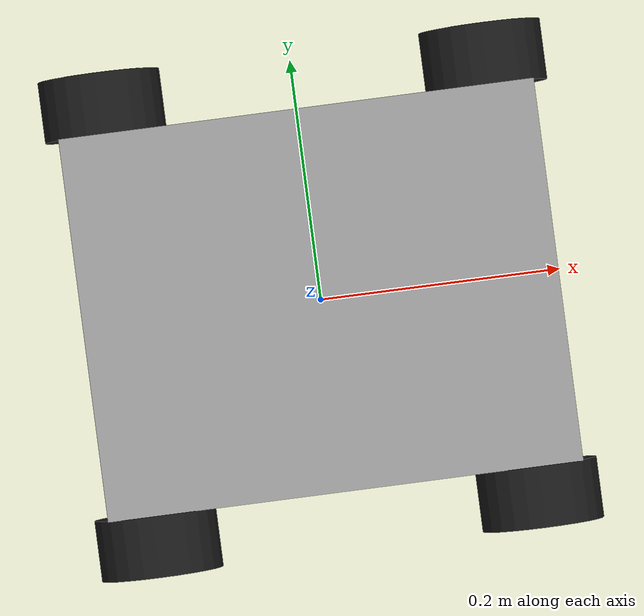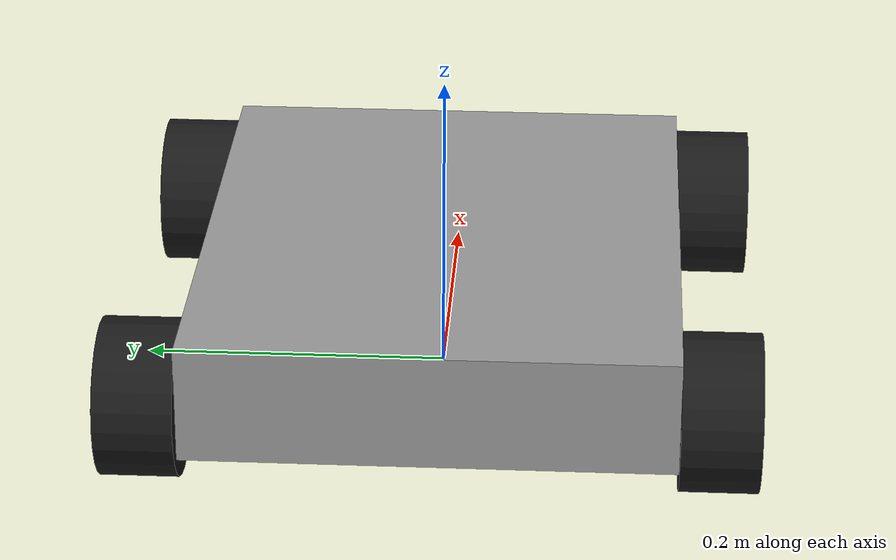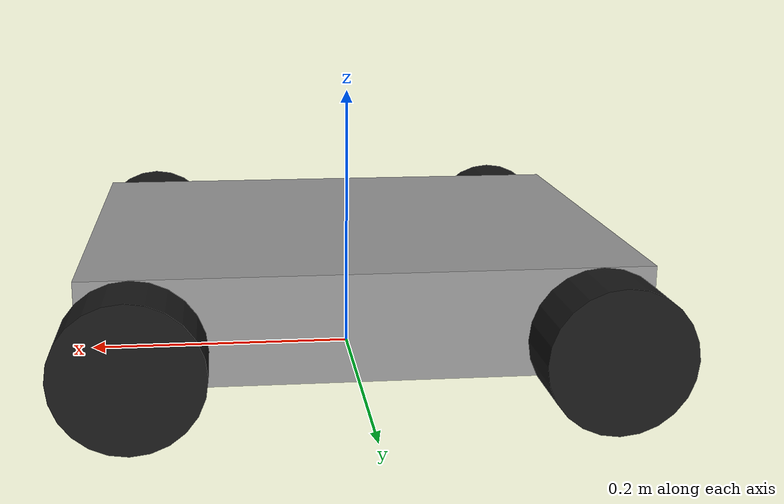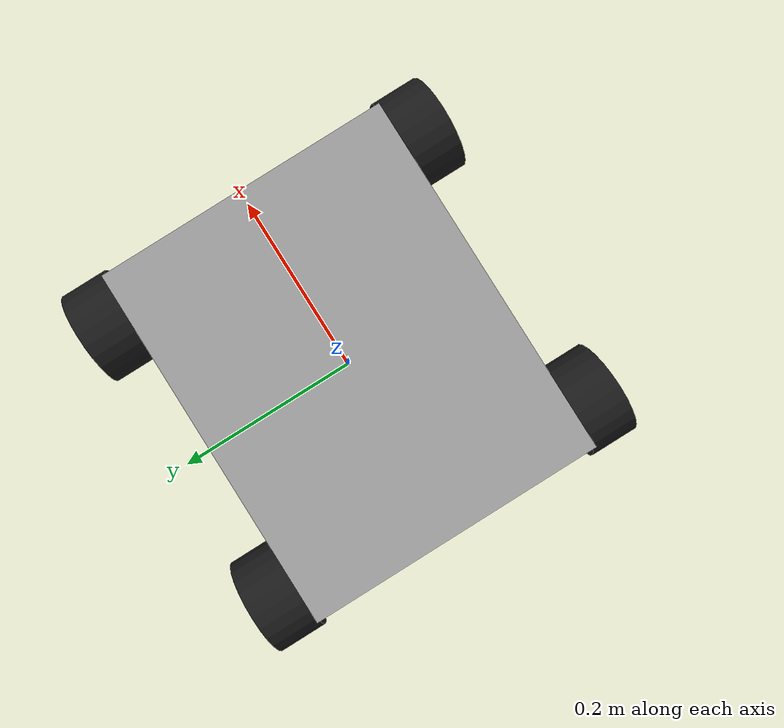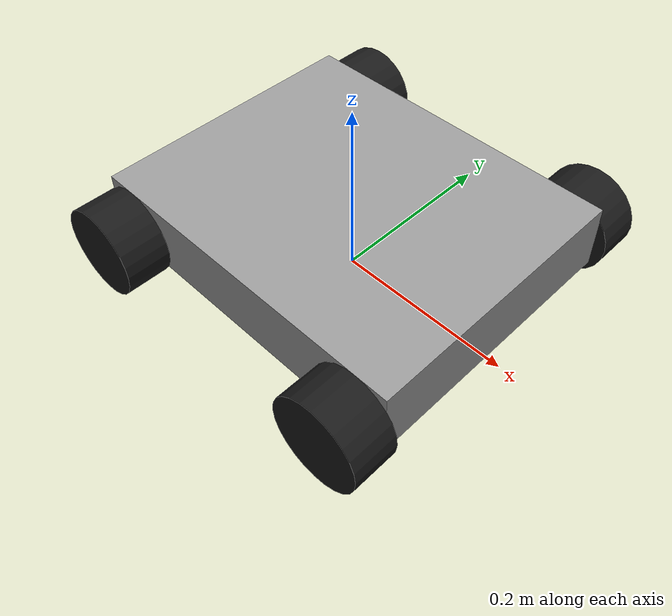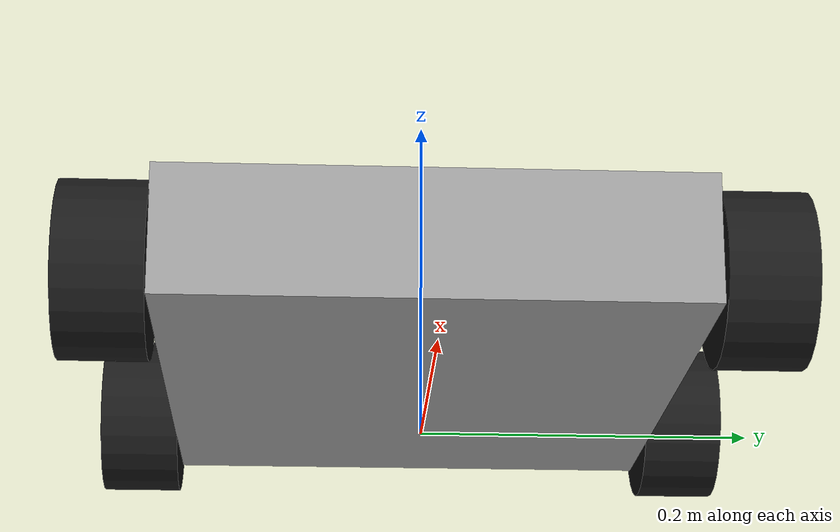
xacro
<?xml version="1.0"?>
<robot xmlns:xacro="http://ros.org/wiki/xacro" name="mecanum_bot">

  <xacro:include filename="mecanum_wheel_inertial.xacro"/>

  <!-- 顏色材質 -->
  <material name="gray"><color rgba="0.6 0.6 0.6 1.0"/></material>
  <material name="black"><color rgba="0.1 0.1 0.1 1.0"/></material>

  <!-- 底盤參數 -->
  <xacro:property name="chassis_length" value="0.3865"/>
  <xacro:property name="chassis_width"  value="0.3115"/>
  <xacro:property name="chassis_height" value="0.075"/>
  <xacro:property name="chassis_z"      value="${0.025 + 0.075 / 2}"/>

  <!-- 輪子參數 -->
  <xacro:property name="wheel_radius" value="0.05"/>
  <xacro:property name="wheel_width"  value="0.05"/>
  <xacro:property name="wheel_mass"   value="0.3875"/>

  <!-- 輪子位置 -->
  <xacro:property name="wheel_x_offset" value="0.157"/>
  <xacro:property name="wheel_y_offset" value="0.1805"/>

  <!-- ✅ odom → base_link（為 RViz 提供 TF） -->
  <link name="odom"/>
  <joint name="odom_to_base" type="fixed">
    <parent link="odom"/>
    <child link="base_link"/>
    <origin xyz="0 0 0" rpy="0 0 3.1416"/>
  </joint>

  <!-- base_link & chassis -->
  <link name="base_link"/>
  <joint name="chassis_joint" type="fixed">
    <parent link="base_link"/>
    <child link="chassis"/>
    <origin xyz="0 0 0"/>
  </joint>

  <!-- 底盤 -->
  <link name="chassis">
    <visual>
      <geometry>
        <box size="${chassis_length} ${chassis_width} ${chassis_height}"/>
      </geometry>
      <origin xyz="0 0 ${chassis_z}"/>
      <material name="gray"/>
    </visual>
    <collision>
      <geometry>
        <box size="${chassis_length} ${chassis_width} ${chassis_height}"/>
      </geometry>
      <origin xyz="0 0 ${chassis_z}"/>
    </collision>
    <inertial>
      <mass value="2.0"/>
      <origin xyz="0 0 ${chassis_z}"/>
      <inertia ixx="0.1" iyy="0.1" izz="0.1" ixy="0" ixz="0" iyz="0"/>
    </inertial>
  </link>

  <gazebo reference="chassis">
    <material>Gazebo/Gray</material>
  </gazebo>

  <!-- 🛞 Mecanum 輪 Macro（修正前進方向） -->
  <xacro:macro name="mecanum_wheel" params="name x y rpy_sign axis_sign">
    <link name="${name}_link">
      <visual>
        <geometry>
          <cylinder length="${wheel_width}" radius="${wheel_radius}"/>
        </geometry>
        <material name="black"/>
      </visual>
      <collision>
        <geometry>
          <cylinder length="${wheel_width}" radius="${wheel_radius}"/>
        </geometry>
      </collision>
      <xacro:mecanum_wheel_inertial mass="${wheel_mass}" radius="${wheel_radius}" length="${wheel_width}"/>
    </link>

    <joint name="${name}_joint" type="continuous">
      <parent link="chassis"/>
      <child link="${name}_link"/>
      <origin xyz="${x} ${y} 0.05" rpy="${rpy_sign} 0 0"/>
      <axis xyz="0 0 ${axis_sign}"/>
      <limit effort="1.5" velocity="40.0"/>
    </joint>

    <gazebo reference="${name}_link">
      <material>Gazebo/Black</material>
    </gazebo>
  </xacro:macro>

  <!-- ✅ 四個輪子設定（修正前進方向） -->
  <xacro:mecanum_wheel name="front_left_wheel"  x="${wheel_x_offset}"  y="${wheel_y_offset}"  rpy_sign="-1.5708" axis_sign="1"/>
  <xacro:mecanum_wheel name="front_right_wheel" x="${wheel_x_offset}"  y="-${wheel_y_offset}" rpy_sign="1.5708"  axis_sign="-1"/>
  <xacro:mecanum_wheel name="rear_left_wheel"   x="-${wheel_x_offset}" y="${wheel_y_offset}"  rpy_sign="-1.5708" axis_sign="1"/>
  <xacro:mecanum_wheel name="rear_right_wheel"  x="-${wheel_x_offset}" y="-${wheel_y_offset}" rpy_sign="1.5708"  axis_sign="-1"/>

</robot>

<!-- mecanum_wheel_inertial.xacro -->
<robot xmlns:xacro="http://ros.org/wiki/xacro">

  <xacro:macro name="mecanum_wheel_inertial" params="mass radius length">
    <inertial>
      <mass value="${mass}"/>
      <origin xyz="0 0 0" rpy="0 0 0"/>
      <inertia
        ixx="${(1/12)*mass*(3*radius*radius + length*length)}"
        iyy="${(1/12)*mass*(3*radius*radius + length*length)}"
        izz="${0.5*mass*radius*radius}"
        ixy="0.0" ixz="0.0" iyz="0.0"/>
    </inertial>
  </xacro:macro>

</robot>
